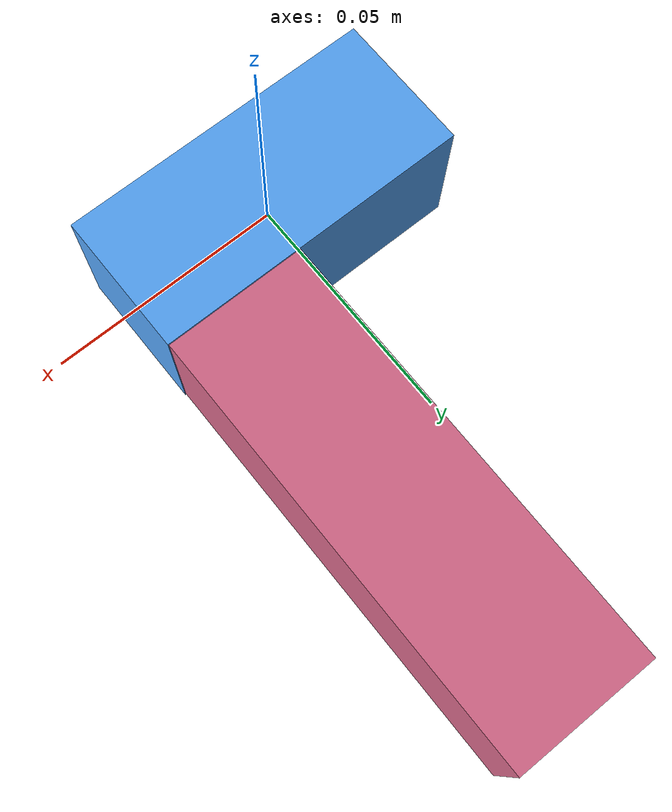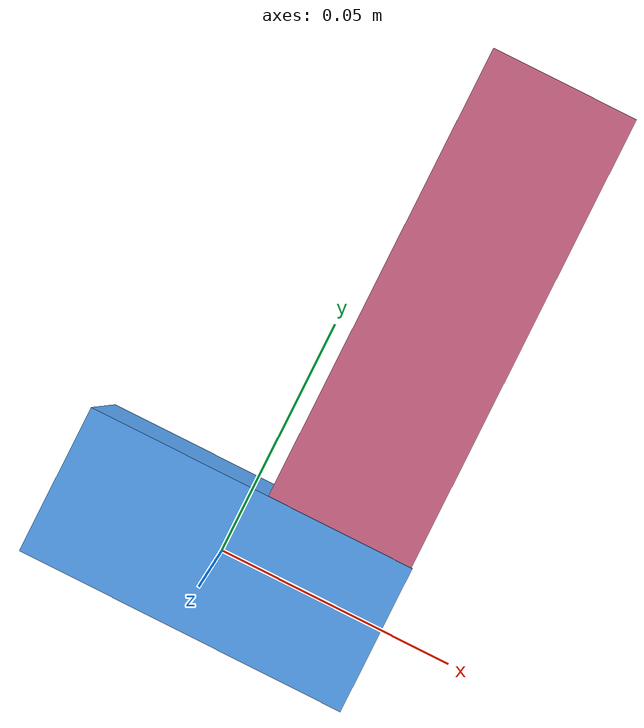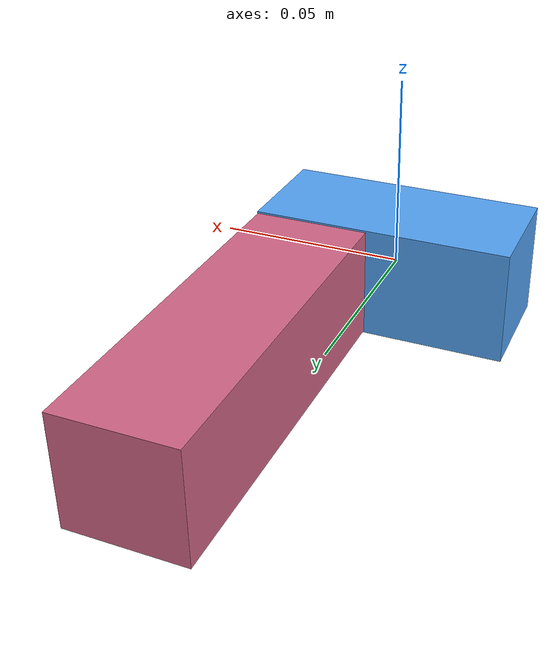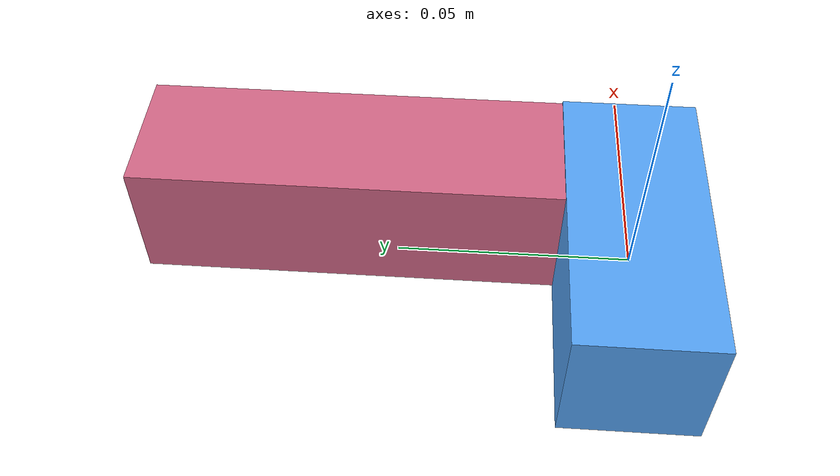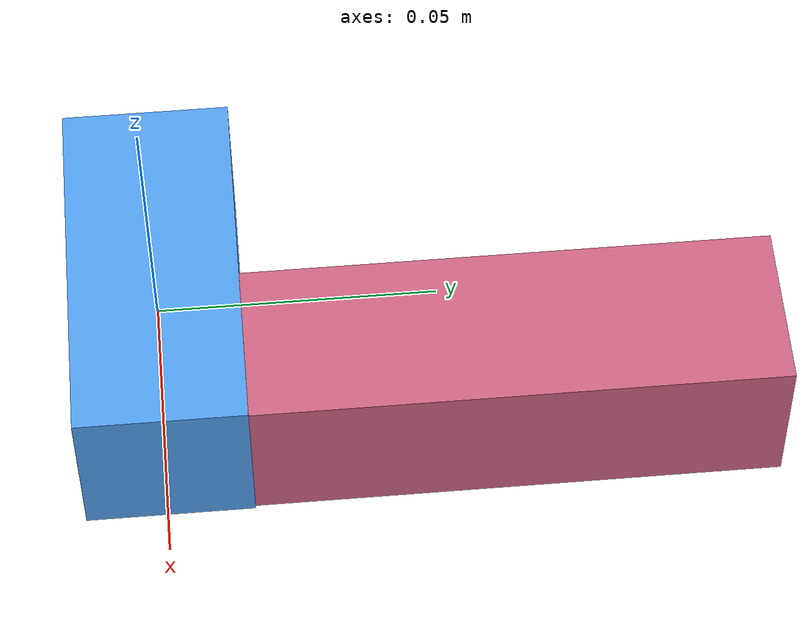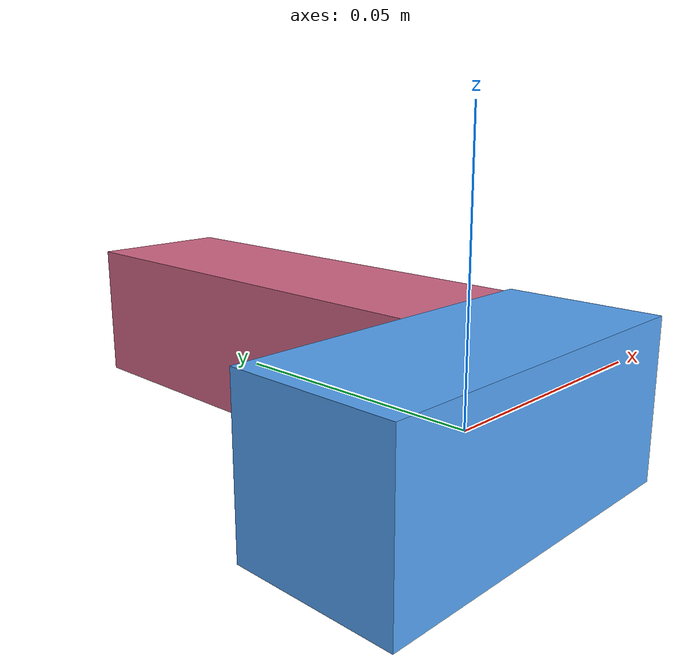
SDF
<sdf version="1.4"><world name="default"><model name="object0"><link name="link1"><pose>0 0 0 0 0 0</pose><inertial><pose>0 0 0 0 0 0</pose><mass>0.03630589626982714</mass><inertia><ixx>5.44588444047407e-06</ixx><ixy>0</ixy><iyy>1.639905651881606e-05</iyy><ixz>0</ixz><iyz>0</iyz><izz>1.639905651881606e-05</izz></inertia></inertial><visual name="link1_visual"><pose>0 0  0 0 0 0</pose><geometry><box><size>0.06723314124042062 0.03 0.03</size></box></geometry><material><diffuse>0.3314142917799187 0.645337064129196 0.9652726129730729 1</diffuse></material></visual><collision><pose>0 0  0 0 0 0</pose><geometry><box><size>0.06723314124042062 0.03 0.03</size></box></geometry></collision></link><link name="link2"><pose>0.018438352800659183 0.06087136416592611 0 0 0 0</pose><inertial><pose>0 0 0 0 0 0</pose><mass>0.05201348593281224</mass><inertia><ixx>4.3859449214686284e-05</ixx><ixy>0</ixy><iyy>7.546289917418842e-06</iyy><ixz>0</ixz><iyz>0</iyz><izz>4.411518218718928e-05</izz></inertia></inertial><visual name="link2_visual"><pose>0 0  0 0 0 0</pose><geometry><box><size>0.03 0.0963212702459486 0.028999999999999998</size></box></geometry><material><diffuse>0.8308802030293838 0.4058917664671098 0.5333648552303127 1</diffuse></material></visual><collision><pose>0 0  0 0 0 0</pose><geometry><box><size>0.03 0.0963212702459486 0.028999999999999998</size></box></geometry></collision></link><joint name="link_joint_0" type="fixed"><parent>link1</parent><child>link2</child><pose>0 0 0 0 0 0</pose><axis><xyz>0 0 1</xyz></axis></joint></model></world></sdf>
